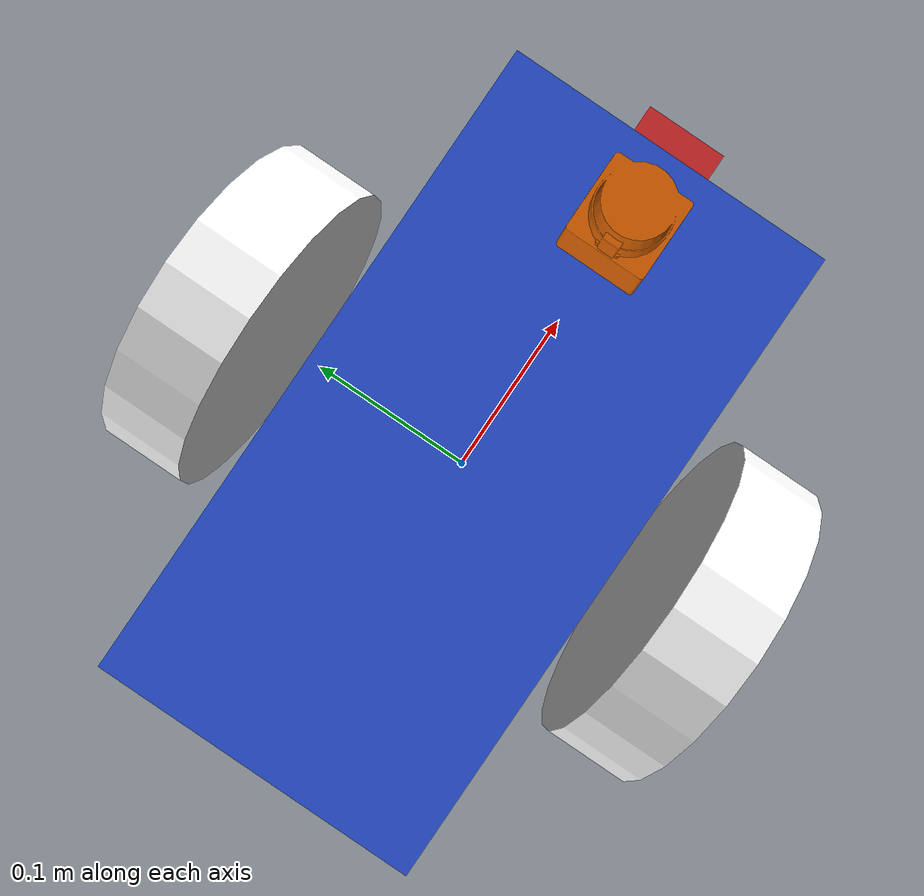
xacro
<?xml version="1.0"?>

<robot name="my_robot" xmlns:xacro="http://www.ros.org/wiki/xacro">

  <!-- 4.8. プラグインの読み込み -->
  <xacro:include filename="$(find my_robot)/urdf/my_robot.gazebo" />

  <!-- ロボットの足元を示すリンク -->
  <link name="robot_footprint"></link>

  <!-- ロボットの足元とシャーシを接続するジョイント -->
  <joint name="robot_footprint_joint" type="fixed">
    <origin xyz="0 0 0" rpy="0 0 0" /> <!-- 始点の座標と回転を指定 -->
    <parent link="robot_footprint"/> <!-- 親リンク: 足元 -->
    <child link="chassis" /> <!-- 子リンク: シャーシ -->
  </joint>

  <!-- シャーシリンク -->
  <link name="chassis">
    <pose>0 0 0.1 0 0 0</pose> <!-- シャーシの位置と姿勢 -->

    <!-- シャーシの慣性情報 -->
    <inertial>
      <mass value="15.0"/> <!-- 質量 -->
      <origin xyz="0.0 0 0" rpy=" 0 0 0"/> <!-- 慣性の原点と回転 -->
      <inertia
          ixx="0.1" ixy="0" ixz="0"
          iyy="0.1" iyz="0"
          izz="0.1"
      /> <!-- 慣性行列 -->
    </inertial>

    <!-- シャーシの衝突形状 -->
    <collision name="collision">
      <origin xyz="0 0 0" rpy=" 0 0 0"/> <!-- 衝突判定の原点 -->
      <geometry>
        <box size=".4 .2 .1"/> <!-- 衝突形状: 箱のサイズ -->
      </geometry>
    </collision>

    <!-- シャーシの視覚的な形状 -->
    <visual name="chassis_visual">
      <origin xyz="0 0 0" rpy=" 0 0 0"/> <!-- 視覚の原点 -->
      <geometry>
        <box size=".4 .2 .1"/> <!-- 視覚形状: 箱のサイズ -->
      </geometry>
    </visual>

    <!-- 後部キャスターの衝突形状 -->
    <collision name="back_caster_collision">
      <origin xyz="-0.15 0 -0.05" rpy=" 0 0 0"/> <!-- 衝突判定の原点 -->
      <geometry>
        <sphere radius="0.0499"/> <!-- 衝突形状: 球の半径 -->
      </geometry>
    </collision>

    <!-- 後部キャスターの視覚的な形状 -->
    <visual name="back_caster_visual">
      <origin xyz="-0.15 0 -0.05" rpy=" 0 0 0"/> <!-- 視覚の原点 -->
      <geometry>
        <sphere radius="0.05"/> <!-- 視覚形状: 球の半径 -->
      </geometry>
    </visual>

    <!-- 前部キャスターの衝突形状 -->
    <collision name="front_caster_collision">
      <origin xyz="0.15 0 -0.05" rpy=" 0 0 0"/> <!-- 衝突判定の原点 -->
      <geometry>
        <sphere radius="0.0499"/> <!-- 衝突形状: 球の半径 -->
      </geometry>
    </collision>

    <!-- 前部キャスターの視覚的な形状 -->
    <visual name="front_caster_visual">
      <origin xyz="0.15 0 -0.05" rpy=" 0 0 0"/> <!-- 視覚の原点 -->
      <geometry>
        <sphere radius="0.05"/> <!-- 視覚形状: 球の半径 -->
      </geometry>
    </visual>
  </link>

   <!--Define variables for cylinder-->
  <xacro:property name="mass"   value="5" />
  <xacro:property name="radius" value="0.1" />
  <xacro:property name="length" value="0.05" />
  <xacro:property name="wheel_offset" value="0.15" />

  <!-- Left Wheel -->
  <link name="left_wheel">
    <inertial>
      <origin xyz="0 0 ${radius}" rpy="0 1.5707 1.5707"/>
      <mass value="${mass}"/>
      <inertia
        ixx="0.1" ixy="0.0" ixz="0.0"
        iyy="0.1" iyz="0.0"
        izz="0.1"/>
    </inertial>

    <visual>
      <origin xyz="0 0 0" rpy="0 1.5707 1.5707"/>
      <geometry>
        <cylinder length="${length}" radius="${radius}"/>
      </geometry>
      <material name="white">
        <color rgba="1.0 1.0 1.0 1.0"/>
      </material>
    </visual>

    <collision>
      <origin xyz="0 0 0" rpy="0 1.5707 1.5707"/>
      <geometry>
        <cylinder length="${length}" radius="${radius}"/>
      </geometry>
    </collision>

  </link>

  <joint type="continuous" name="left_wheel_hinge">
    <origin xyz="0 ${wheel_offset} 0" rpy="0 0 0"/>
    <child link="left_wheel"/>
    <parent link="chassis"/>
    <axis xyz="0 1 0" rpy="0 0 0"/>
    <limit effort="10000" velocity="1000"/>
    <dynamics damping="1.0" friction="1.0"/>
  </joint>

  <!-- Right Wheel -->
  <link name="right_wheel">
    <inertial>
      <origin xyz="0 0 ${radius}" rpy="0 1.5707 1.5707"/>
      <mass value="${mass}"/>
      <inertia
        ixx="0.1" ixy="0.0" ixz="0.0"
        iyy="0.1" iyz="0.0"
        izz="0.1"/>
    </inertial>

    <visual>
      <origin xyz="0 0 0" rpy="0 1.5707 1.5707"/>
      <geometry>
        <cylinder length="${length}" radius="${radius}"/>
      </geometry>
      <material name="white">
        <color rgba="1.0 1.0 1.0 1.0"/>
      </material>
    </visual>

    <collision>
      <origin xyz="0 0 0" rpy="0 1.5707 1.5707"/>
      <geometry>
        <cylinder length="${length}" radius="${radius}"/>
      </geometry>
    </collision>

  </link>

  <joint type="continuous" name="right_wheel_hinge">
    <origin xyz="0 -${wheel_offset} 0" rpy="0 0 0"/>
    <child link="right_wheel"/>
    <parent link="chassis"/>
    <axis xyz="0 1 0" rpy="0 0 0"/>
    <limit effort="10000" velocity="1000"/>
    <dynamics damping="1.0" friction="1.0"/>
  </joint>

  <!-- Cameraリンク -->
  <link name="camera">

    <!-- Cameraの慣性情報 -->
    <inertial>
      <mass value="0.1"/> <!-- 質量 -->
      <origin xyz="0 0 0" rpy=" 0 0 0"/> <!-- 慣性の原点と回転 -->
      <inertia
          ixx="0.05" ixy="0" ixz="0"
          iyy="0.05" iyz="0"
          izz="0.05"
      /> <!-- 慣性行列 -->
    </inertial>

    <!-- Cameraの衝突形状 -->
    <collision>
      <origin xyz="0 0 0" rpy=" 0 0 0"/> <!-- 衝突判定の原点 -->
      <geometry>
        <box size="0.05 0.05 0.05"/> <!-- 衝突形状: 箱のサイズ -->
      </geometry>
    </collision>

    <!-- Cameraの視覚的な形状 -->
    <visual>
      <origin xyz="0 0 0" rpy=" 0 0 0"/> <!-- 視覚の原点 -->
      <geometry>
        <box size="0.05 0.05 0.05"/> <!-- 視覚形状: 箱のサイズ -->
      </geometry>
    </visual>

  </link>

  <joint type="fixed" name="camera_joint">
    <origin xyz="0.2 0 0" rpy="0 0 0"/>
    <child link="camera"/>
    <parent link="chassis"/>
  </joint>

 <!-- Lidarリンク -->
  <link name="hokuyo">

    <!-- Lidarの慣性情報 -->
    <inertial>
      <mass value="1e-5"/> <!-- 質量 -->
      <origin xyz="0 0 0" rpy=" 0 0 0"/> <!-- 慣性の原点と回転 -->
      <inertia
          ixx="1e-6" ixy="0" ixz="0"
          iyy="1e-6" iyz="0"
          izz="1e-6"
      /> <!-- 慣性行列 -->
    </inertial>

    <!-- Lidarの衝突形状 -->
    <collision>
      <origin xyz="0 0 0" rpy=" 0 0 0"/> <!-- 衝突判定の原点 -->
      <geometry>
        <mesh filename="package://my_robot/meshes/hokuyo.dae" scale="1 1 1"/> <!-- 外部メッシュを使用 -->
      </geometry>
    </collision>

    <!-- Lidarの視覚的な形状 -->
    <visual>
      <origin xyz="0 0 0" rpy=" 0 0 0"/> <!-- 視覚の原点 -->
      <geometry>
        <mesh filename="package://my_robot/meshes/hokuyo.dae" scale="1 1 1"/> <!-- 外部メッシュを使用 -->
      </geometry>
    </visual>

  </link>

  <joint type="fixed" name="hokuyo_joint">
    <origin xyz="0.15 0 0.08" rpy="0 0 0"/>
    <child link="hokuyo"/>
    <parent link="chassis"/>
  </joint>

  <!-- 色の設定. visualの中のmaterialは反映されなかった -->
  <gazebo reference="chassis">
    <material>Gazebo/Blue</material>
  </gazebo>

  <gazebo reference="left_wheel">
    <material>Gazebo/Green</material>
  </gazebo>

  <gazebo reference="right_wheel">
    <material>Gazebo/Green</material>
  </gazebo>

  <gazebo reference="camera">
    <material>Gazebo/Red</material>
  </gazebo>

</robot>
